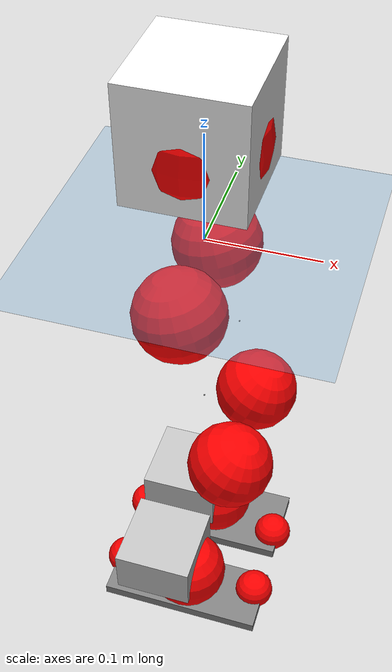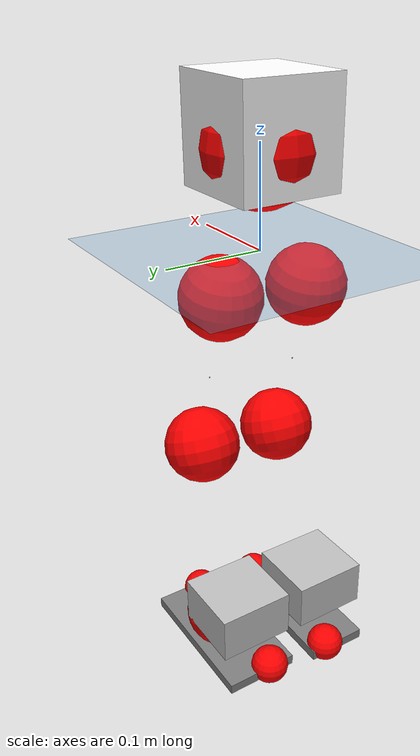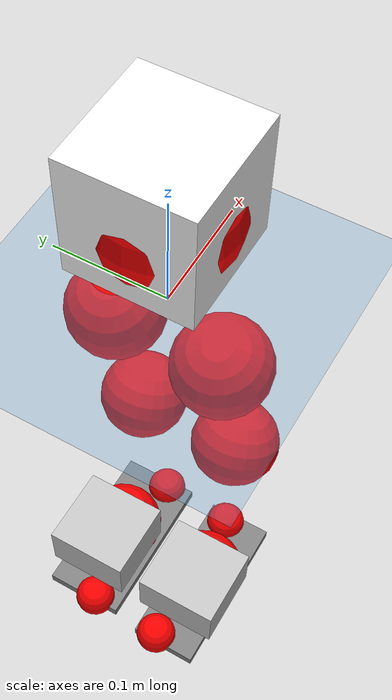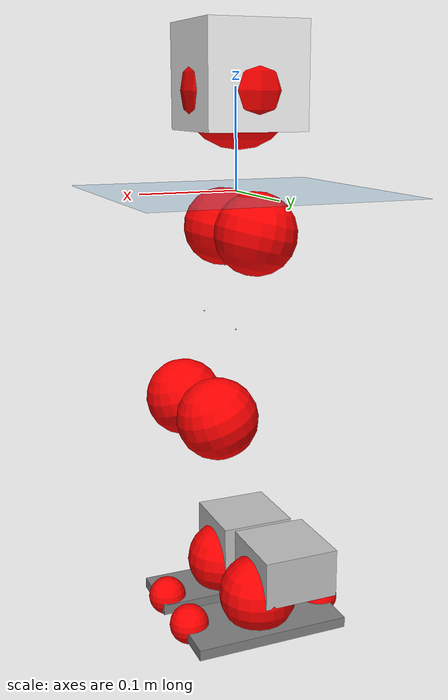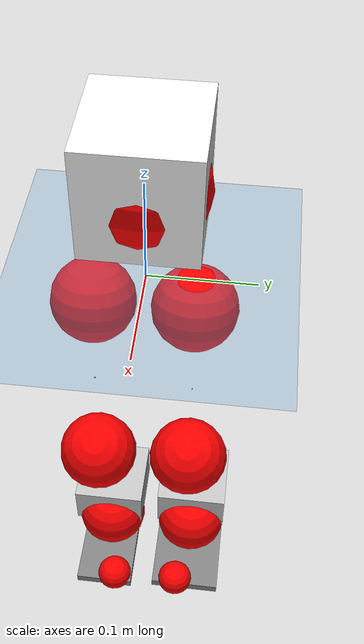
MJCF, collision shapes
<mujoco model="pi_12dof_release_v1">
  <compiler angle="radian" assetdir="assets" balanceinertia="true" inertiafromgeom="false"/>

  <option timestep="0.005" density="1.2" viscosity="2e-05"/>

  <size nkey="1"/>

  <visual>
    <quality shadowsize="8192"/>
    <map shadowclip="0.5"/>
  </visual>

  <default>
    <default class="/">
      <joint armature="0.01" damping="0.01" frictionloss="0.01"/>
      <geom contype="0" conaffinity="0" group="1" solref="-1000 -80"/>
      <site size="0.01 0.005 0.005" group="5"/>
      <general forcelimited="true" biastype="affine" gainprm="20" biasprm="0 -20 -0.5"/>
      <default class="foot">
        <geom size="0.0845 0.036 0.005" type="box" condim="6" group="4" priority="1" friction="0.9 0.2 0.2" solimp="0.015 1 0.005"/>
      </default>
      <default class="reward_collision_sphere">
        <geom group="5" rgba="1 0 0 1"/>
      </default>
    </default>
  </default>

  <asset>
    <texture type="skybox" colorspace="auto" name="//unnamed_texture_0" builtin="gradient" rgb1="0.95 0.95 0.95" rgb2="0.95 0.95 0.95" width="100" height="600"/>
    <texture type="2d" colorspace="auto" name="texplane" builtin="checker" rgb1="0.345 0.575 0.748" rgb2="0.345 0.575 0.748" markrgb="1 1 1" width="512" height="512"/>
    <material name="MatPlane" class="/" texture="texplane" texuniform="true" texrepeat="2 2" specular="0.9"/>
    <mesh name="baselink_1" class="/" file="baselink_1.STL"/>
    <mesh name="r_hip_pitch_link" class="/" file="r_hip_pitch_link.STL"/>
    <mesh name="r_hip_roll_link" class="/" file="r_hip_roll_link.STL"/>
    <mesh name="r_thigh_link" class="/" file="r_thigh_link.STL"/>
    <mesh name="r_calf_link" class="/" file="r_calf_link.STL"/>
    <mesh name="r_ankle_pitch_link" class="/" file="r_ankle_pitch_link.STL"/>
    <mesh name="r_ankle_roll_link" class="/" file="r_ankle_roll_link.STL"/>
    <mesh name="l_hip_pitch_link" class="/" file="l_hip_pitch_link.STL"/>
    <mesh name="l_hip_roll_link" class="/" file="l_hip_roll_link.STL"/>
    <mesh name="l_thigh_link" class="/" file="l_thigh_link.STL"/>
    <mesh name="l_calf_link" class="/" file="l_calf_link.STL"/>
    <mesh name="l_ankle_pitch_link" class="/" file="l_ankle_pitch_link.STL"/>
    <mesh name="l_ankle_roll_link" class="/" file="l_ankle_roll_link.STL"/>
  </asset>

  <worldbody>
    <geom name="floor" class="/" size="100 100 0.125" type="plane" group="0" material="MatPlane"/>
    <light name="toplight_shadow" class="/" pos="0 0 5" dir="0.0990148 0.0990148 -0.990148" type="directional" ambient="0.04 0.04 0.04" diffuse="0.55 0.55 0.55" specular="0.12 0.12 0.12"/>
    <light name="toplight_fill" class="/" pos="0 0 5" dir="0.0990148 0.0990148 -0.990148" type="directional" castshadow="false" ambient="0.04 0.04 0.04" diffuse="0.3 0.3 0.3" specular="0.08 0.08 0.08"/>
    <body name="trunk" pos="-0.00232677 0.000347397 0.00269945" quat="0.999999 -0.000317966 -7.21615e-05 -0.00130154">
      <inertial pos="0.00518495 2.45716e-05 0.0512243" quat="0.691629 0.00254016 0.00442637 0.722235" mass="2.27169" diaginertia="0.0171834 0.000809117 0.0179129"/>
      <joint name="//unnamed_joint_0" type="free"/>
      <geom name="//unnamed_geom_1" class="/" type="mesh" density="0" rgba="1 1 1 1" mesh="baselink_1"/>
      <geom name="//unnamed_geom_2" class="/" size="0.0511831 0.0511831 0.0511831" pos="0 0 0.106744" type="box" rgba="1 1 1 1"/>
      <geom name="//unnamed_geom_3" class="reward_collision_sphere" size="0.0563014" pos="0 0 0.093401"/>
      <site name="imu" class="/" pos="-0.00444949 0.00122861 0.00424012" size="0.0102366"/>
      <camera name="track" class="/" pos="0 -1.23305 0" quat="0.707107 0.707107 0 0" mode="trackcom"/>
      <camera name="ego_camera" class="/" pos="0.084012 0 0.240174" quat="-0.5 -0.5 0.5 0.5"/>
      <body name="r_hip_pitch_link" pos="-0.000687307 -0.0148214 -0.0462118" quat="0.992189 -9.49087e-05 -0.124743 -0.000142417">
        <inertial pos="0.0016942 -0.0356984 9.15679e-05" quat="-0.0205136 0.706734 -0.0278595 0.706633" mass="0.421961" diaginertia="0.000195228 8.93476e-06 0.000364253"/>
        <joint name="r_hip_pitch_joint" class="/" pos="0 0 0" axis="0.00320456 -0.999988 0.00380834" stiffness="3.77037e-05" range="-1.74435 1.27752" armature="0.0101935" damping="0.0138514" frictionloss="0.00884483"/>
        <geom name="//unnamed_geom_4" class="/" type="mesh" density="0" rgba="0.75294 0.75294 0.75294 1" mesh="r_hip_pitch_link"/>
        <geom name="//unnamed_geom_5" class="/" size="0.000511831 0.000511831 0.000511831" type="box" rgba="0.75294 0.75294 0.75294 1"/>
        <body name="r_hip_roll_link" pos="-0.00215437 -0.0362564 0.0022223" quat="1 -0.000158427 0.000124892 0.000106685">
          <inertial pos="-0.00135746 5.38417e-05 -0.0794538" quat="0.707597 -0.0753228 -0.0808737 0.69792" mass="0.408646" diaginertia="0.000586316 2.53544e-05 0.000560416"/>
          <joint name="r_hip_roll_joint" class="/" pos="0 0 0" axis="-0.999977 0.00294398 -0.00603688" range="-0.105408 0.490448" armature="0.00926437" damping="0.0166251" frictionloss="0.00960834"/>
          <geom name="//unnamed_geom_6" class="/" type="mesh" density="0" rgba="0.75294 0.75294 0.75294 1" mesh="r_hip_roll_link"/>
          <geom name="//unnamed_geom_7" class="/" size="0.000511831 0.000511831 0.000511831" type="box" rgba="0.75294 0.75294 0.75294 1"/>
          <geom name="//unnamed_geom_8" class="reward_collision_sphere" size="0.0409465"/>
          <body name="r_thigh_link" pos="-0.0014381 -0.000205348 -0.0921258" quat="0.999999 0.000489732 -5.02968e-05 0.000972049">
            <inertial pos="-0.000707315 0.00333661 -0.0661376" quat="0.738305 0.674453 0.00270457 -0.00345121" mass="0.118058" diaginertia="0.000215136 8.29588e-06 0.000246032"/>
            <joint name="r_thigh_joint" class="/" pos="0 0 0" axis="-0.000599969 0.0020747 -0.999998" stiffness="0.00666359" range="-0.330023 0.546663" armature="0.00964659" damping="0" frictionloss="0.0115383"/>
            <geom name="//unnamed_geom_9" class="/" type="mesh" density="0" rgba="0.75294 0.75294 0.75294 1" mesh="r_thigh_link"/>
            <geom name="//unnamed_geom_10" class="/" size="0.000511831 0.000511831 0.000511831" type="box" rgba="0.75294 0.75294 0.75294 1"/>
            <body name="r_calf_link" pos="0.00141624 0.00279999 -0.095443" quat="0.947686 0.000240365 0.319203 5.33721e-06">
              <inertial pos="-0.00239511 0.00193951 -0.0949786" quat="0.999933 -0.00287218 0.00882263 0.00694788" mass="0.889615" diaginertia="0.00625669 0.000314043 0.000740286"/>
              <joint name="r_calf_joint" class="/" pos="0 0 0" axis="-0.00614697 -0.999981 -0.000564757" stiffness="0.00574505" range="-1.64909 0.702418" armature="0.00878602" damping="0" frictionloss="0.010174"/>
              <geom name="//unnamed_geom_11" class="/" type="mesh" density="0" rgba="0.75294 0.75294 0.75294 1" mesh="r_calf_link"/>
              <geom name="//unnamed_geom_12" class="/" size="0.000511831 0.000511831 0.000511831" type="box" rgba="0.75294 0.75294 0.75294 1"/>
              <geom name="//unnamed_geom_13" class="reward_collision_sphere" size="0.0409465"/>
              <body name="r_ankle_pitch_link" pos="0.00191 -0.00145889 -0.187037" quat="0.980039 4.16366e-05 -0.198807 -4.7445e-05">
                <inertial pos="0.00443327 0.000109485 -0.00249017" quat="-0.00539434 0.711041 0.0034087 0.703122" mass="0.186711" diaginertia="0.00051805 1.92447e-05 0.000490213"/>
                <joint name="r_ankle_pitch_joint" class="/" pos="0 0 0" axis="-0.00587215 -0.999966 -0.00577015" range="-1.30097 0.536888" armature="0.0112619" damping="0.00618403" frictionloss="0.0101167"/>
                <geom name="//unnamed_geom_14" class="/" type="mesh" density="0" rgba="0.75294 0.75294 0.75294 1" mesh="r_ankle_pitch_link"/>
                <geom name="//unnamed_geom_15" class="/" size="0.0399228 0.0409465 0.0255915" type="box" rgba="0.75294 0.75294 0.75294 1"/>
                <body name="r_ankle_roll_link" pos="0.0824038 0.00202841 -6.83302e-05" quat="0.999999 0.000579542 8.3659e-05 -0.000914729">
                  <inertial pos="-0.0277567 0.000265624 -0.0185389" quat="0.555488 0.431498 0.440905 0.557535" mass="0.578061" diaginertia="0.00208632 8.97683e-05 0.00120847"/>
                  <joint name="r_ankle_roll_joint" class="/" pos="0 0 0" axis="-0.99992 -0.0114054 0.00551723" range="-0.11538 0.127436" armature="0.00962191" damping="0.00512253" frictionloss="0.0114484"/>
                  <geom name="//unnamed_geom_16" class="/" type="mesh" density="0" rgba="0.75294 0.75294 0.75294 1" mesh="r_ankle_roll_link"/>
                  <geom name="//unnamed_geom_17" class="/" type="mesh" rgba="0.75294 0.75294 0.75294 1" mesh="r_ankle_roll_link"/>
                  <geom name="right_foot" class="foot" size="0.0849076 0.0335199 0.00559944" pos="-0.0571282 0 -0.0587092"/>
                  <geom name="//unnamed_geom_19" class="reward_collision_sphere" size="0.0409465" pos="-0.056008 0 -0.026686"/>
                  <geom name="//unnamed_geom_20" class="reward_collision_sphere" size="0.0204732" pos="0.0168024 0.0123305 -0.053372"/>
                  <geom name="//unnamed_geom_21" class="reward_collision_sphere" size="0.0204732" pos="-0.134419 0.0123305 -0.053372"/>
                  <site name="right_foot" class="foot" pos="-0.0571282 0 -0.0587092" size="0.0102366"/>
                </body>
              </body>
            </body>
          </body>
        </body>
      </body>
      <body name="l_hip_pitch_link" pos="-0.000691902 0.0129758 -0.0432117" quat="0.992205 1.08787e-05 -0.124617 -6.15229e-05">
        <inertial pos="0.000831212 0.0348443 0.00121603" quat="-0.041167 0.703661 0.0292198 0.708741" mass="0.412917" diaginertia="0.00021543 8.99044e-06 0.000406906"/>
        <joint name="l_hip_pitch_joint" class="/" pos="0 0 0" axis="0.00636072 0.999979 0.00149095" range="-1.21263 1.74272" armature="0.00981966" damping="0.0213681" frictionloss="0.0093387"/>
        <geom name="//unnamed_geom_22" class="/" type="mesh" density="0" rgba="0.75294 0.75294 0.75294 1" mesh="l_hip_pitch_link"/>
        <geom name="//unnamed_geom_23" class="/" size="0.000511831 0.000511831 0.000511831" type="box" rgba="0.75294 0.75294 0.75294 1"/>
        <body name="l_hip_roll_link" pos="0.00192339 0.0319173 0.00266977" quat="0.999999 0.000714223 -0.00038814 0.00107916">
          <inertial pos="0.000173903 0.00270171 -0.0797124" quat="0.697474 -0.0773129 -0.079895 0.707933" mass="0.394897" diaginertia="0.000590974 2.47231e-05 0.000551367"/>
          <joint name="l_hip_roll_joint" class="/" pos="0 0 0" axis="-0.999869 0.00981948 -0.0128418" stiffness="0.000959618" range="-0.447739 0.0714024" armature="0.00898383" damping="0.0120615" frictionloss="0.00905546"/>
          <geom name="//unnamed_geom_24" class="/" type="mesh" density="0" rgba="0.75294 0.75294 0.75294 1" mesh="l_hip_roll_link"/>
          <geom name="//unnamed_geom_25" class="/" size="0.000511831 0.000511831 0.000511831" type="box" rgba="0.75294 0.75294 0.75294 1"/>
          <geom name="//unnamed_geom_26" class="reward_collision_sphere" size="0.0409465"/>
          <body name="l_thigh_link" pos="-0.0012827 0.00230095 -0.09433" quat="1 1.72845e-05 4.62095e-05 -1.3784e-05">
            <inertial pos="0.00267487 -0.00104878 -0.0663465" quat="0.672806 0.739759 -0.00939536 -0.000332744" mass="0.116397" diaginertia="0.000208717 8.16119e-06 0.000244691"/>
            <joint name="l_thigh_joint" class="/" pos="0 0 0" axis="0.000499053 0.00159955 -0.999999" range="-0.577477 0.255423" armature="0.011496" damping="0.00320585" frictionloss="0.00979854"/>
            <geom name="//unnamed_geom_27" class="/" type="mesh" density="0" rgba="0.75294 0.75294 0.75294 1" mesh="l_thigh_link"/>
            <geom name="//unnamed_geom_28" class="/" size="0.000511831 0.000511831 0.000511831" type="box" rgba="0.75294 0.75294 0.75294 1"/>
            <body name="l_calf_link" pos="-0.00279874 0.0004103 -0.0911865" quat="0.947741 5.36111e-05 0.31904 3.96363e-05">
              <inertial pos="-0.00196616 0.00406886 -0.0916239" quat="0.999909 0.011421 0.00555567 -0.00465102" mass="0.90156" diaginertia="0.00641343 0.000316813 0.000753916"/>
              <joint name="l_calf_joint" class="/" pos="0 0 0" axis="-0.0010898 0.999995 -0.00305118" stiffness="0.0111223" range="-0.641418 1.70754" armature="0.00990744" damping="0.00445443" frictionloss="0.0116332"/>
              <geom name="//unnamed_geom_29" class="/" type="mesh" density="0" rgba="0.75294 0.75294 0.75294 1" mesh="l_calf_link"/>
              <geom name="//unnamed_geom_30" class="/" size="0.000511831 0.000511831 0.000511831" type="box" rgba="0.75294 0.75294 0.75294 1"/>
              <geom name="//unnamed_geom_31" class="reward_collision_sphere" size="0.0409465"/>
              <body name="l_ankle_pitch_link" pos="-0.00199468 0.00390189 -0.186173" quat="0.980065 -0.000101269 -0.198675 -0.000110535">
                <inertial pos="0.00455671 0.00167512 0.00173772" quat="-0.000321278 0.707415 0.00183357 0.706796" mass="0.181384" diaginertia="0.00052193 1.92702e-05 0.000488981"/>
                <joint name="l_ankle_pitch_joint" class="/" pos="0 0 0" axis="-0.00463031 0.999989 0.000965613" stiffness="0.0029932" range="-0.557342 1.26584" armature="0.00935991" damping="0.0112767" frictionloss="0.0116279"/>
                <geom name="//unnamed_geom_32" class="/" type="mesh" density="0" rgba="0.75294 0.75294 0.75294 1" mesh="l_ankle_pitch_link"/>
                <geom name="//unnamed_geom_33" class="/" size="0.0399228 0.0409465 0.0255915" type="box" rgba="0.75294 0.75294 0.75294 1"/>
                <body name="l_ankle_roll_link" pos="0.0872909 0.000786684 -0.000761054" quat="1 -0.000103775 -0.000409524 0.00031007">
                  <inertial pos="-0.0265259 -0.0031674 -0.0173498" quat="0.562467 0.432135 0.434585 0.555002" mass="0.547024" diaginertia="0.00195427 9.1725e-05 0.00116483"/>
                  <joint name="l_ankle_roll_joint" class="/" pos="0 0 0" axis="-1 -0.000198058 0.000431894" stiffness="0.00527036" range="-0.149995 0.120382" armature="0.010653" damping="0.00297574" frictionloss="0.0116075"/>
                  <geom name="//unnamed_geom_34" class="/" type="mesh" density="0" rgba="0.75294 0.75294 0.75294 1" mesh="l_ankle_roll_link"/>
                  <geom name="//unnamed_geom_35" class="/" type="mesh" rgba="0.75294 0.75294 0.75294 1" mesh="l_ankle_roll_link"/>
                  <geom name="left_foot" class="foot" size="0.0816922 0.0400607 0.00558608" pos="-0.0571282 0 -0.0587092"/>
                  <geom name="//unnamed_geom_37" class="reward_collision_sphere" size="0.0409465" pos="-0.056008 0 -0.026686"/>
                  <geom name="//unnamed_geom_38" class="reward_collision_sphere" size="0.0204732" pos="0.0168024 -0.0123305 -0.053372"/>
                  <geom name="//unnamed_geom_39" class="reward_collision_sphere" size="0.0204732" pos="-0.134419 -0.0123305 -0.053372"/>
                  <site name="left_foot" class="foot" pos="-0.0571282 0 -0.0587092" size="0.0102366"/>
                </body>
              </body>
            </body>
          </body>
        </body>
      </body>
    </body>
  </worldbody>

  <contact>
    <pair class="/" geom1="floor" geom2="right_foot" name="//unnamed_contact_1"/>
    <pair class="/" geom1="floor" geom2="left_foot" name="//unnamed_contact_0"/>
  </contact>

  <actuator>
    <general name="r_hip_pitch_joint" class="/" joint="r_hip_pitch_joint" forcerange="-22.1017 22.1017" gainprm="21.8667" biasprm="0 -21.8667 -0.492532"/>
    <general name="r_hip_roll_joint" class="/" joint="r_hip_roll_joint" forcerange="-21.7731 21.7731" gainprm="21.8667" biasprm="0 -21.8667 -0.492532"/>
    <general name="r_thigh_joint" class="/" joint="r_thigh_joint" forcerange="-21.4162 21.4162" gainprm="21.8667" biasprm="0 -21.8667 -0.492532"/>
    <general name="r_calf_joint" class="/" joint="r_calf_joint" forcerange="-20.9276 20.9276" gainprm="21.8667" biasprm="0 -21.8667 -0.492532"/>
    <general name="r_ankle_pitch_joint" class="/" joint="r_ankle_pitch_joint" forcerange="-22.5614 22.5614" gainprm="21.8667" biasprm="0 -21.8667 -0.492532"/>
    <general name="r_ankle_roll_joint" class="/" joint="r_ankle_roll_joint" forcerange="-21.0675 21.0675" gainprm="21.8667" biasprm="0 -21.8667 -0.492532"/>
    <general name="l_hip_pitch_joint" class="/" joint="l_hip_pitch_joint" forcerange="-20.7601 20.7601" gainprm="21.8667" biasprm="0 -21.8667 -0.492532"/>
    <general name="l_hip_roll_joint" class="/" joint="l_hip_roll_joint" forcerange="-22.5746 22.5746" gainprm="21.8667" biasprm="0 -21.8667 -0.492532"/>
    <general name="l_thigh_joint" class="/" joint="l_thigh_joint" forcerange="-19.3142 19.3142" gainprm="21.8667" biasprm="0 -21.8667 -0.492532"/>
    <general name="l_calf_joint" class="/" joint="l_calf_joint" forcerange="-20.7106 20.7106" gainprm="21.8667" biasprm="0 -21.8667 -0.492532"/>
    <general name="l_ankle_pitch_joint" class="/" joint="l_ankle_pitch_joint" forcerange="-22.6868 22.6868" gainprm="21.8667" biasprm="0 -21.8667 -0.492532"/>
    <general name="l_ankle_roll_joint" class="/" joint="l_ankle_roll_joint" forcerange="-19.942 19.942" gainprm="21.8667" biasprm="0 -21.8667 -0.492532"/>
  </actuator>

  <sensor>
    <gyro site="imu" name="imu_angular_velocity"/>
    <velocimeter site="imu" name="imu_linear_velocity"/>
    <framelinvel objtype="site" objname="left_foot" name="left_foot_global_linear_velocity"/>
    <framelinvel objtype="site" objname="right_foot" name="right_foot_global_linear_velocity"/>
  </sensor>

  <keyframe>
    <key name="home" qpos="0 0 0.291 1 0 0 0 0.4 0 0 -0.8 0.4 0 -0.4 0 0 0.8 -0.4 0"/>
  </keyframe>
</mujoco>
